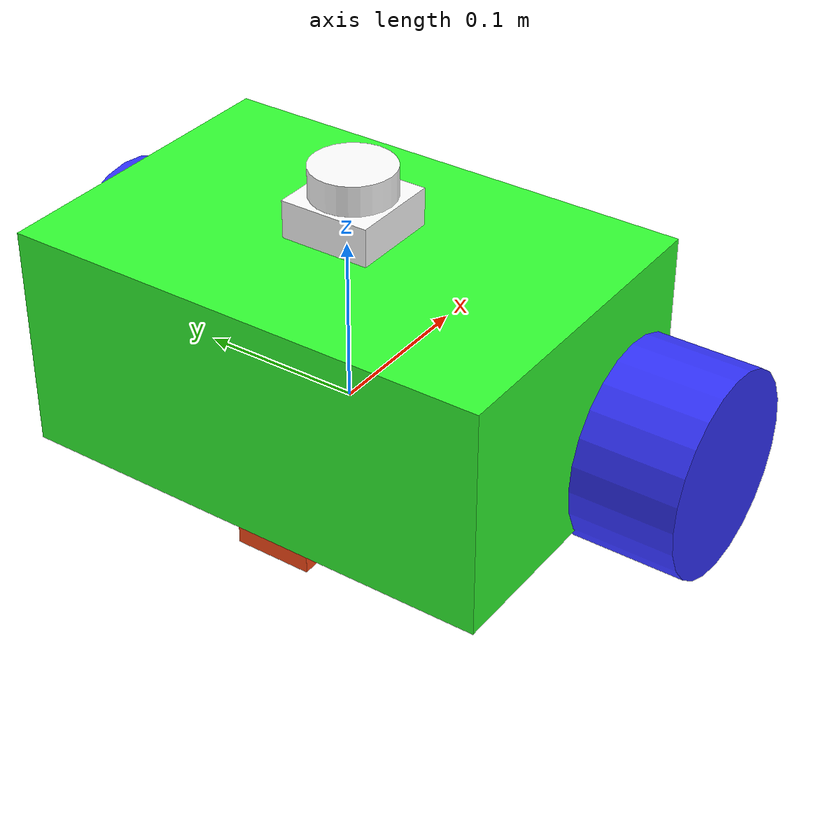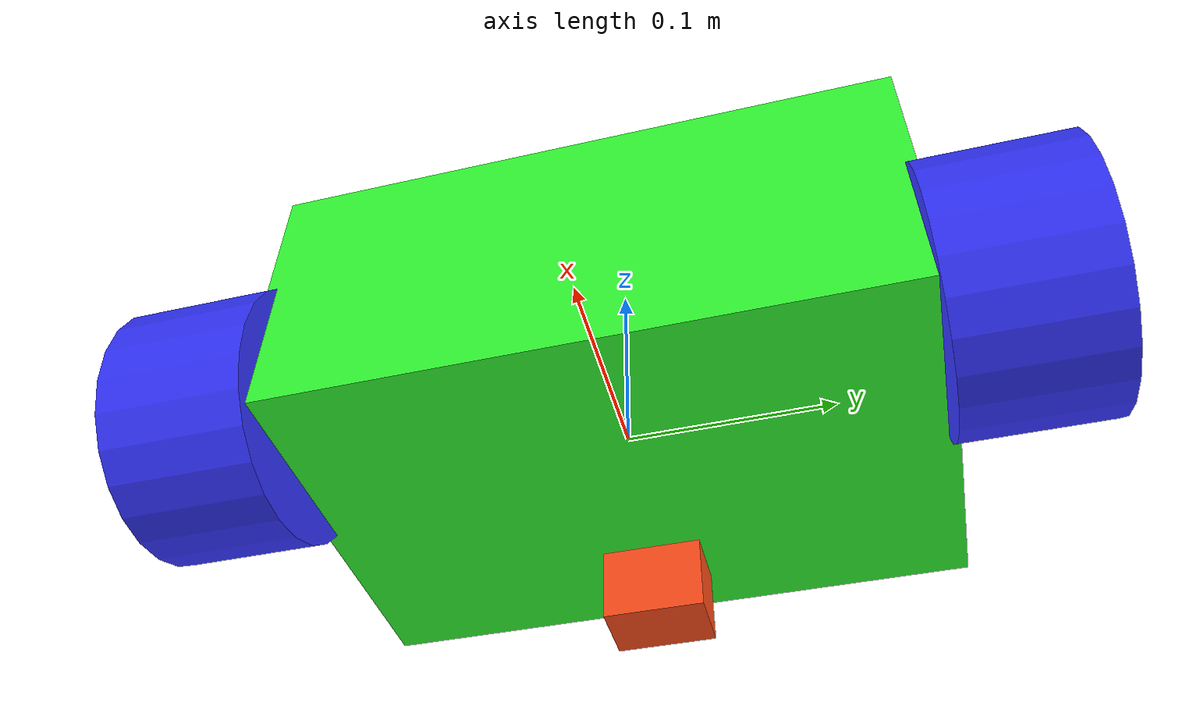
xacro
<?xml version="1.0"?>
<robot xmlns:xacro="https://www.ros.org/wiki/xacro" name="robot">

    <!-- Include the relative robot description file -->
    <xacro:include filename="robot_description.xacro" />

    <!-- Include the relative sensor file -->
    <xacro:include filename="lidar_sensor.xacro" />

</robot>

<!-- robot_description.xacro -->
<robot xmlns:xacro="https://www.ros.org/wiki/xacro" name="robot_lidar">
    <!-- **********Specific color********** -->
    <material name="orange">
        <color rgba="1.0 0.3 0.1 1.0"/>
    </material>
    <material name="blue">
        <color rgba="0.2 0.2 1.0 1.0"/>
    </material>
    <material name="green">
        <color rgba="0.2 1.0 0.2 1.0"/>
    </material>
    <material name="aluminium">
        <color rgba="0.5 0.5 0.5 0.8"/>
    </material>

    <!-- **********Declare variable********** -->
    <!-- Define the variable for base_joint -->
    <xacro:property name="xOriBaseJoint" value="0.0" />
    <xacro:property name="yOriBaseJoint" value="0.0" />
    <xacro:property name="zOriBaseJoint" value="0.0" />
    <xacro:property name="rollOriBaseJoint" value="0.0" />
    <xacro:property name="pitchOriBaseJoint" value="0.0" />
    <xacro:property name="yallOriBaseJoint" value="0.0" />
    <!-- Define the visual/collision/inertia variable for base_link -->
    <xacro:property name="base_width" value="0.3" />
    <xacro:property name="base_length" value="0.2" />
    <xacro:property name="base_height" value="0.138" />
    <xacro:property name="xOriBaseLink" value="0.0" />
    <xacro:property name="yOriBaseLink" value="0.0" />
    <xacro:property name="zOriBaseLink" value="0.036" />
    <xacro:property name="rollOriBaseLink" value="0.0" />
    <xacro:property name="pitchOriBaseLink" value="0.0" />
    <xacro:property name="yallOriBaseLink" value="0.0" />

    <!-- Define the variable for lwheel_joint -->
    <xacro:property name="xOriLWheelJoint" value="0.0539" />
    <xacro:property name="yOriLWheelJoint" value="0.15" />
    <xacro:property name="zOriLWheelJoint" value="0.0" />
    <xacro:property name="rollOriLWheelJoint" value="-${pi/2}" />
    <xacro:property name="pitchOriLWheelJoint" value="0.0" />
    <xacro:property name="yallOriLWheelJoint" value="0.0" />
    <!-- Define the visual/collision/inertia variable for lwheel_link -->

    <xacro:property name="wheel_radius" value="0.0615" />
    <xacro:property name="wheel_length" value="0.068" />

    <xacro:property name="xOriLWheelLink" value="0.0" />
    <xacro:property name="yOriLWheelLink" value="0.0" />
    <xacro:property name="zOriLWheelLink" value="0.029" />
    <xacro:property name="rollOriLWheelLink" value="0.0" />
    <xacro:property name="pitchOriLWheelLink" value="0.0" />
    <xacro:property name="yallOriLWheelLink" value="0.0" />

    <!-- Define the variable for rwheel_joint -->
    <xacro:property name="xOriRWheelJoint" value="0.0539" />
    <xacro:property name="yOriRWheelJoint" value="-0.15" />
    <xacro:property name="zOriRWheelJoint" value="0.0" />
    <xacro:property name="rollOriRWheelJoint" value="${pi/2}" />
    <xacro:property name="pitchOriRWheelJoint" value="0.0" />
    <xacro:property name="yallOriRWheelJoint" value="0.0" />
    <!-- Define the visual/collision/inertia variable for rwheel_link -->
    <xacro:property name="xOriRWheelLink" value="0.0" />
    <xacro:property name="yOriRWheelLink" value="0.0" />
    <xacro:property name="zOriRWheelLink" value="0.029" />
    <xacro:property name="rollOriRWheelLink" value="0.0" />
    <xacro:property name="pitchOriRWheelLink" value="0.0" />
    <xacro:property name="yallOriRWheelLink" value="0.0" />

    <!-- Define the variable for support_base_joint -->
    <xacro:property name="xOriSupportBaseJoint" value="-0.06" />
    <xacro:property name="yOriSupportBaseJoint" value="0.0" />
    <xacro:property name="zOriSupportBaseJoint" value="-0.051" />
    <xacro:property name="rollOriSupportBaseJoint" value="0.0" />
    <xacro:property name="pitchOriSupportBaseJoint" value="0.0" />
    <xacro:property name="yallOriSupportBaseJoint" value="0.0" />
    <!-- Define the visual/collision/inertia variable for support_base_link -->
    <xacro:property name="support_base_width" value="0.032" />
    <xacro:property name="suport_base_length" value="0.048" />
    <xacro:property name="suport_base_height" value="0.036" />
    <xacro:property name="xOriSupportBaseLink" value="0.0" />
    <xacro:property name="yOriSupportBaseLink" value="0.0" />
    <xacro:property name="zOriSupportBaseLink" value="0.0" />
    <xacro:property name="rollOriSupportBaseLink" value="0.0" />
    <xacro:property name="pitchOriSupportBaseLink" value="0.0" />
    <xacro:property name="yallOriSupportBaseLink" value="${pi/2}" />

    <!-- **********Macro function********** -->
    <!-- Define the function link visual of box -->
    <xacro:macro name="box_visual" params="length width height color *origin">
        <xacro:insert_block name="origin"/>
        <geometry>
            <box size="${length} ${width} ${height}"/>
        </geometry>
        <material name="${color}" />
    </xacro:macro>

    <!-- Define the function link visual of cylinder-->
    <xacro:macro name="cylinder_visual" params="length radius color *origin">
        <xacro:insert_block name="origin"/>
        <geometry>
            <cylinder length="${length}" radius="${radius}"/>
        </geometry>
        <material name="${color}" />
    </xacro:macro>

    <!-- Define the function link collision of box-->
    <xacro:macro name="box_collision" params="length width height *origin">
        <xacro:insert_block name="origin"/>
        <geometry>
            <box size="${length} ${width} ${height}"/>
        </geometry>
    </xacro:macro>

    <!-- Define the function link collision of cylinder-->
    <xacro:macro name="cylinder_collision" params="length radius *origin">
        <xacro:insert_block name="origin"/>
        <geometry>
            <cylinder length="${length}" radius="${radius}"/>
        </geometry>
    </xacro:macro>

    <!-- Define the function link Inertia of box -->
    <xacro:macro name="box_inertia" params="mass x y z *origin">
        <xacro:insert_block name="origin"/>
        <mass value="${mass}"/>
        <inertia ixx="0.0" ixy="0.0" ixz="0.0" iyy="0.0" iyz="0.0" izz="0.0"/>
    </xacro:macro>

    <!-- Define the function link Inertia of cylinder -->
    <xacro:macro name="cylinder_inertia" params="mass radius *origin">
        <xacro:insert_block name="origin"/>
        <mass value="${mass}"/>
        <inertia ixx="0.0" ixy="0.0" ixz="0.0" iyy="0.0" iyz="0.0" izz="0.0"/>
    </xacro:macro>

    <!-- **********Coding here********** -->
    <!-- Create the world_link was emptry -->
    <link name="world"></link>

    <!-- Create the base_joint was fix on the ground -->
    <joint name="base_joint" type="fixed">
        <origin xyz="${xOriBaseJoint} ${yOriBaseJoint} ${zOriBaseJoint}" rpy="${rollOriBaseJoint} ${pitchOriBaseJoint} ${yallOriBaseJoint}"/>
        <parent link="world"/>
        <child link="base_link"/>
    </joint>

    <!-- Create the base_link -->
    <link name="base_link">
        <visual>
            <xacro:box_visual length="${base_length}" width="${base_width}" height="${base_height}" color="green">
                <origin xyz="${xOriBaseLink} ${yOriBaseLink} ${zOriBaseLink}" rpy="${rollOriBaseLink} ${pitchOriBaseLink} ${yallOriBaseLink}"/>
            </xacro:box_visual>
        </visual>
        <collision>
            <xacro:box_collision length="${base_length}" width="${base_width}" height="${base_height}">
                <origin xyz="${xOriBaseLink} ${yOriBaseLink} ${zOriBaseLink}" rpy="${rollOriBaseLink} ${pitchOriBaseLink} ${yallOriBaseLink}"/>
            </xacro:box_collision>
        </collision>
        <inertial>
            <xacro:box_inertia mass="1.0" x="0.0" y="0.0" z="0.0">
                <origin xyz="${xOriBaseLink} ${yOriBaseLink} ${zOriBaseLink}" rpy="${rollOriBaseLink} ${pitchOriBaseLink} ${yallOriBaseLink}"/>
            </xacro:box_inertia>
        </inertial>
    </link>

    <!-- Create the lwheel_joint -->
    <joint name="lwheel_joint" type="continuous">
        <origin xyz="${xOriLWheelJoint} ${yOriLWheelJoint} ${zOriLWheelJoint}" rpy="${rollOriLWheelJoint} ${pitchOriLWheelJoint} ${yallOriLWheelJoint}"/>
        <parent link="base_link"/>
        <child link="lwheel_link"/>
        <axis xyz="0.0 0.0 1.0"/>
        <!-- The continuous joint doesn't have the limit -->
    </joint>

    <!-- Create the lwheel_link -->
    <link name="lwheel_link">
        <visual>
            <xacro:cylinder_visual length="${wheel_length}" radius="${wheel_radius}" color="blue">
                <origin xyz="${xOriLWheelLink} ${yOriLWheelLink} ${zOriLWheelLink}" rpy="${rollOriLWheelLink} ${pitchOriLWheelLink} ${yallOriLWheelLink}"/>
            </xacro:cylinder_visual>
        </visual>
        <collision>
            <xacro:cylinder_collision length="${wheel_length}" radius="${wheel_radius}">
                <origin xyz="${xOriLWheelLink} ${yOriLWheelLink} ${zOriLWheelLink}" rpy="${rollOriLWheelLink} ${pitchOriLWheelLink} ${yallOriLWheelLink}"/>
            </xacro:cylinder_collision>
        </collision>
        <inertial>
            <xacro:cylinder_inertia mass="1.0" radius="${wheel_radius}" >
                <origin xyz="${xOriLWheelLink} ${yOriLWheelLink} ${zOriLWheelLink}" rpy="${rollOriLWheelLink} ${pitchOriLWheelLink} ${yallOriLWheelLink}"/>
            </xacro:cylinder_inertia>
        </inertial>
    </link>

    <!-- Create the rwheel_joint -->
    <joint name="rwheel_joint" type="continuous">
        <origin xyz="${xOriRWheelJoint} ${yOriRWheelJoint} ${zOriRWheelJoint}" rpy="${rollOriRWheelJoint} ${pitchOriRWheelJoint} ${yallOriRWheelJoint}"/>
        <parent link="base_link"/>
        <child link="rwheel_link"/>
        <axis xyz="0.0 0.0 1.0"/>
        <!-- The continuous joint doesn't have the limit -->
    </joint>

    <!-- Create the rwheel_link -->
    <link name="rwheel_link">
        <visual>
            <xacro:cylinder_visual length="${wheel_length}" radius="${wheel_radius}" color="blue">
                <origin xyz="${xOriRWheelLink} ${yOriRWheelLink} ${zOriRWheelLink}" rpy="${rollOriRWheelLink} ${pitchOriRWheelLink} ${yallOriRWheelLink}"/>
            </xacro:cylinder_visual>
        </visual>
        <collision>
            <xacro:cylinder_collision length="${wheel_length}" radius="${wheel_radius}">
                <origin xyz="${xOriRWheelLink} ${yOriRWheelLink} ${zOriRWheelLink}" rpy="${rollOriRWheelLink} ${pitchOriRWheelLink} ${yallOriRWheelLink}"/>
            </xacro:cylinder_collision>
        </collision>
        <inertial>
            <xacro:cylinder_inertia mass="1.0" radius="${wheel_radius}">
                <origin xyz="${xOriRWheelLink} ${yOriRWheelLink} ${zOriRWheelLink}" rpy="${rollOriRWheelLink} ${pitchOriRWheelLink} ${yallOriRWheelLink}"/>
            </xacro:cylinder_inertia>
        </inertial>
    </link>

    <!-- Create the support_base_joint -->
    <joint name="support_base_joint" type="fixed">
        <origin xyz="${xOriSupportBaseJoint} ${yOriSupportBaseJoint} ${zOriSupportBaseJoint}" rpy="${rollOriSupportBaseJoint} ${pitchOriSupportBaseJoint} ${yallOriSupportBaseJoint}"/>
        <parent link="base_link"/>
        <child link="support_base_link"/>
    </joint>

    <!-- Create the support_base_link -->
    <link name="support_base_link">
        <visual>
            <xacro:box_visual length="${suport_base_length}" width="${support_base_width}" height="${suport_base_height}" color="orange">
                <origin xyz="${xOriSupportBaseLink} ${yOriSupportBaseLink} ${zOriSupportBaseLink}" rpy="${rollOriSupportBaseLink} ${pitchOriSupportBaseLink} ${yallOriSupportBaseLink}"/>
            </xacro:box_visual>
        </visual>
        <collision>
            <xacro:box_collision length="${suport_base_length}" width="${support_base_width}" height="${suport_base_height}">
                <origin xyz="${xOriSupportBaseLink} ${yOriSupportBaseLink} ${zOriSupportBaseLink}" rpy="${rollOriSupportBaseLink} ${pitchOriSupportBaseLink} ${yallOriSupportBaseLink}"/>
            </xacro:box_collision>
        </collision>
        <inertial>
            <xacro:box_inertia mass="1.0" x="0.0" y="0.0" z="0.0">
                <origin xyz="${xOriSupportBaseLink} ${yOriSupportBaseLink} ${zOriSupportBaseLink}" rpy="${rollOriSupportBaseLink} ${pitchOriSupportBaseLink} ${yallOriSupportBaseLink}"/>
            </xacro:box_inertia>
        </inertial>
    </link>

</robot>

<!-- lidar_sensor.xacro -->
<robot xmlns:xacro="https://www.ros.org/wiki/xacro" name="lidar_sensor">
     <!-- **********Specific color********** -->
    <material name="white">
        <color rgba="1.0 1.0 1.0 1.0"/>
    </material>

    <!-- **********Declare variable********** -->
    <!-- Define the variable for boxRplidar_joint -->
    <xacro:property name="xOriboxRplidarJoint" value="0.0065" />
    <xacro:property name="yOriboxRplidarJoint" value="0.0" />
    <xacro:property name="zOriboxRplidarJoint" value="0.11655" />
    <xacro:property name="rollOriboxRplidarJoint" value="0.0" />
    <xacro:property name="pitchOriboxRplidarJoint" value="0.0" />
    <xacro:property name="yallOriboxRplidarJoint" value="0.0" />
    <!-- Define the visual/collision/inertia variable for boxRplidar_link -->
    <xacro:property name="boxRplidar_width" value="0.0556" />
    <xacro:property name="boxRplidar_length" value="0.0556" />
    <xacro:property name="boxRplidar_height" value="0.0231" />
    <xacro:property name="xOriboxRplidarLink" value="0.0" />
    <xacro:property name="yOriboxRplidarLink" value="0.0" />
    <xacro:property name="zOriboxRplidarLink" value="0.0" />
    <xacro:property name="rollOriboxRplidarLink" value="0.0" />
    <xacro:property name="pitchOriboxRplidarLink" value="0.0" />
    <xacro:property name="yallOriboxRplidarLink" value="0.0" />

    <!-- Define the variable for cylinderRplidar_joint -->
    <xacro:property name="xOriCylinderRplidarJoint" value="0.0" />
    <xacro:property name="yOriCylinderRplidarJoint" value="0.0" />
    <xacro:property name="zOriCylinderRplidarJoint" value="${( boxRplidar_height / 2 ) + (cylinderRplidar_width / 2 )}" />
    <xacro:property name="rollOriCylinderRplidarJoint" value="0.0" />
    <xacro:property name="pitchOriCylinderRplidarJoint" value="0.0" />
    <xacro:property name="yallOriCylinderRplidarJoint" value="0.0" />
    <!-- Define the visual/collision/inertia variable for cylinderRplidar_link -->
    <xacro:property name="cylinderRplidar_radius" value="0.02525" />
    <xacro:property name="cylinderRplidar_width" value="0.0182" />
    <xacro:property name="xOriCylinderRplidarLink" value="0.0" />
    <xacro:property name="yOriCylinderRplidarLink" value="0.0" />
    <xacro:property name="zOriCylinderRplidarLink" value="0.0" />
    <xacro:property name="rollOriCylinderRplidarLink" value="0.0" />
    <xacro:property name="pitchOriCylinderRplidarLink" value="0.0" />
    <xacro:property name="yallOriCylinderRplidarLink" value="0.0" />

     <!-- **********Macro function********** -->
    <!-- Define the function link visual of box -->
    <xacro:macro name="box_visual" params="length width height color *origin">
        <xacro:insert_block name="origin"/>
        <geometry>
            <box size="${length} ${width} ${height}"/>
        </geometry>
        <material name="${color}" />
    </xacro:macro>

    <!-- Define the function link visual of cylinder-->
    <xacro:macro name="cylinder_visual" params="length radius color *origin">
        <xacro:insert_block name="origin"/>
        <geometry>
            <cylinder length="${length}" radius="${radius}"/>
        </geometry>
        <material name="${color}" />
    </xacro:macro>

    <!-- Define the function link collision of box-->
    <xacro:macro name="box_collision" params="length width height *origin">
        <xacro:insert_block name="origin"/>
        <geometry>
            <box size="${length} ${width} ${height}"/>
        </geometry>
    </xacro:macro>

    <!-- Define the function link collision of cylinder-->
    <xacro:macro name="cylinder_collision" params="length radius *origin">
        <xacro:insert_block name="origin"/>
        <geometry>
            <cylinder length="${length}" radius="${radius}"/>
        </geometry>
    </xacro:macro>

    <!-- Define the function link Inertia of box -->
    <xacro:macro name="box_inertia" params="mass x y z *origin">
        <xacro:insert_block name="origin"/>
        <mass value="${mass}"/>
        <inertia ixx="0.0" ixy="0.0" ixz="0.0" iyy="0.0" iyz="0.0" izz="0.0"/>
    </xacro:macro>

    <!-- Define the function link Inertia of cylinder -->
    <xacro:macro name="cylinder_inertia" params="mass radius *origin">
        <xacro:insert_block name="origin"/>
        <mass value="${mass}"/>
        <inertia ixx="0.0" ixy="0.0" ixz="0.0" iyy="0.0" iyz="0.0" izz="0.0"/>
    </xacro:macro>

    <!-- **********Coding here********** -->
    <!-- Create the boxRplidar_joint -->
    <joint name="boxRplidar_joint" type="fixed">
        <origin xyz="${xOriboxRplidarJoint} ${yOriboxRplidarJoint} ${zOriboxRplidarJoint}" rpy="${rollOriboxRplidarJoint} ${pitchOriboxRplidarJoint} ${yallOriboxRplidarJoint}"/>
        <parent link="base_link"/>
        <child link="boxRplidar_link"/>
    </joint>

    <!-- Create the boxRplidar_link -->
    <link name="boxRplidar_link">
        <visual>
            <xacro:box_visual length="${boxRplidar_length}" width="${boxRplidar_width}" height="${boxRplidar_height}" color="white" >
                <origin xyz="${xOriboxRplidarLink} ${yOriboxRplidarLink} ${zOriboxRplidarLink}" rpy="${rollOriboxRplidarLink} ${pitchOriboxRplidarLink} ${yallOriboxRplidarLink}"/>
            </xacro:box_visual>
        </visual>
        <collision>
            <xacro:box_collision length="${boxRplidar_length}" width="${boxRplidar_width}" height="${boxRplidar_height}">
                <origin xyz="${xOriboxRplidarLink} ${yOriboxRplidarLink} ${zOriboxRplidarLink}" rpy="${rollOriboxRplidarLink} ${pitchOriboxRplidarLink} ${yallOriboxRplidarLink}"/>
            </xacro:box_collision>
        </collision>
        <inertial>
            <xacro:box_inertia mass="1.0" x="0.0" y="0.0" z="0.0">
                <origin xyz="${xOriboxRplidarLink} ${yOriboxRplidarLink} ${zOriboxRplidarLink}" rpy="${rollOriboxRplidarLink} ${pitchOriboxRplidarLink} ${yallOriboxRplidarLink}"/>
            </xacro:box_inertia>
        </inertial>
    </link>

    <!-- Create the cylinderRplidar_joint -->
    <joint name="cylinderRplidar_joint" type="continuous">
        <origin xyz="${xOriCylinderRplidarJoint} ${yOriCylinderRplidarJoint} ${zOriCylinderRplidarJoint}" rpy="${rollOriCylinderRplidarJoint} ${pitchOriCylinderRplidarJoint} ${yallOriCylinderRplidarJoint}"/>
        <parent link="boxRplidar_link"/>
        <child link="cylinderRplidar_link"/>
        <axis xyz="0.0 0.0 1.0"/>
    </joint>

    <!-- Create the cylinderRplidar_link -->
    <link name="cylinderRplidar_link">
        <visual>
            <xacro:cylinder_visual length="${cylinderRplidar_width}" radius="${cylinderRplidar_radius}" color="white" >
                <origin xyz="${xOriCylinderRplidarLink} ${yOriCylinderRplidarLink} ${zOriCylinderRplidarLink}" rpy="${rollOriCylinderRplidarLink} ${pitchOriCylinderRplidarLink} ${yallOriCylinderRplidarLink}"/>
            </xacro:cylinder_visual>
        </visual>
        <collision>
            <xacro:cylinder_collision length="${cylinderRplidar_width}" radius="${cylinderRplidar_radius}">
                <origin xyz="${xOriCylinderRplidarLink} ${yOriCylinderRplidarLink} ${zOriCylinderRplidarLink}" rpy="${rollOriCylinderRplidarLink} ${pitchOriCylinderRplidarLink} ${yallOriCylinderRplidarLink}"/>
            </xacro:cylinder_collision>
        </collision>
        <inertial>
            <xacro:cylinder_inertia mass="1.0" radius="${cylinderRplidar_radius}">
                <origin xyz="${xOriCylinderRplidarLink} ${yOriCylinderRplidarLink} ${zOriCylinderRplidarLink}" rpy="${rollOriCylinderRplidarLink} ${pitchOriCylinderRplidarLink} ${yallOriCylinderRplidarLink}"/>
            </xacro:cylinder_inertia>
        </inertial>
    </link>

</robot>
